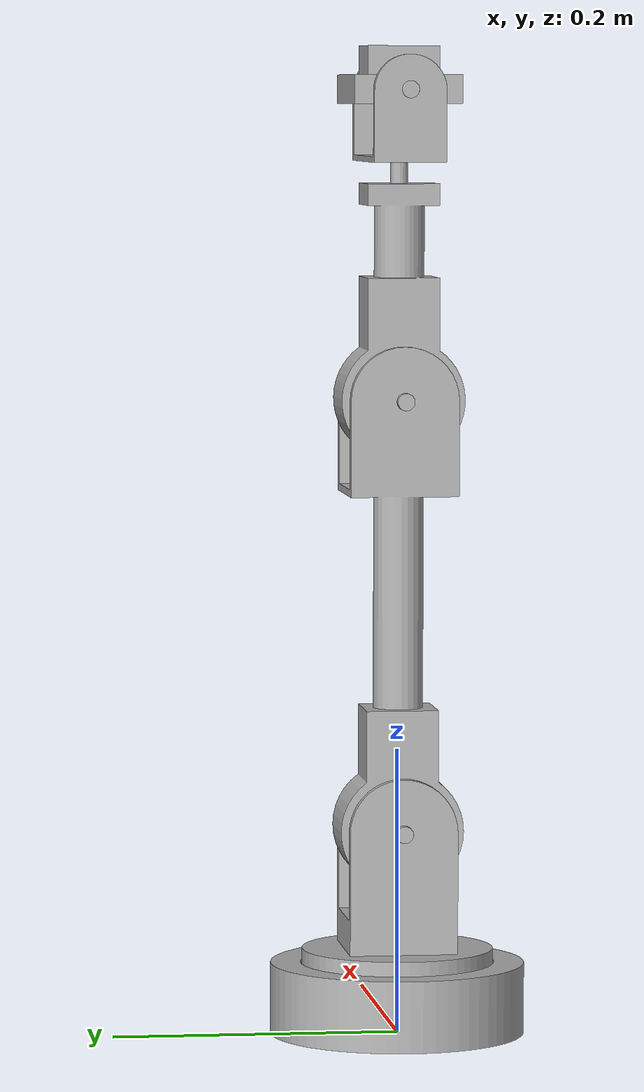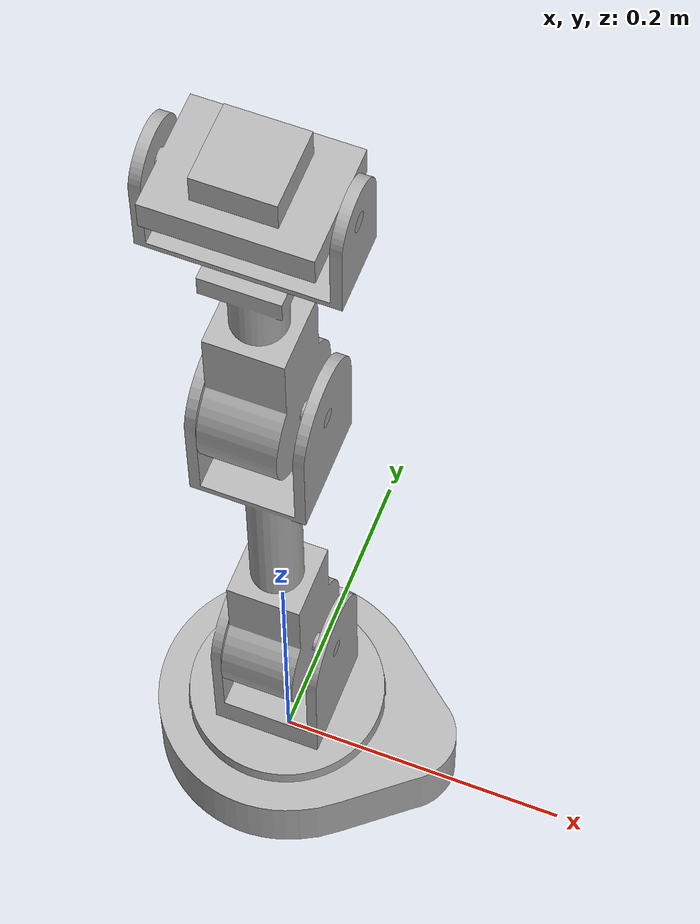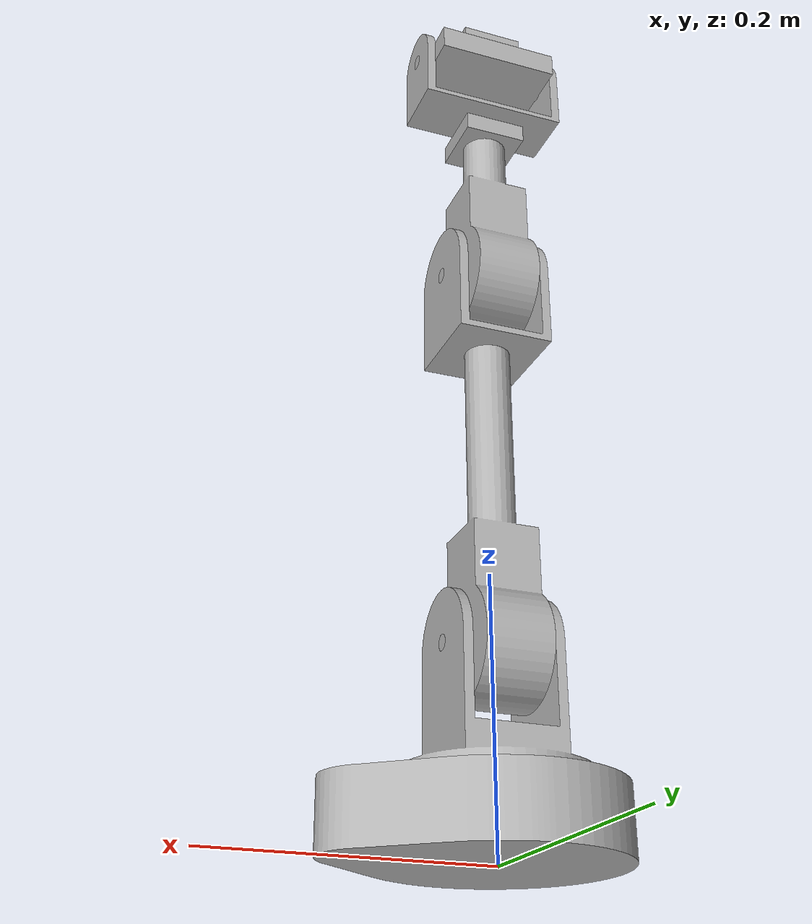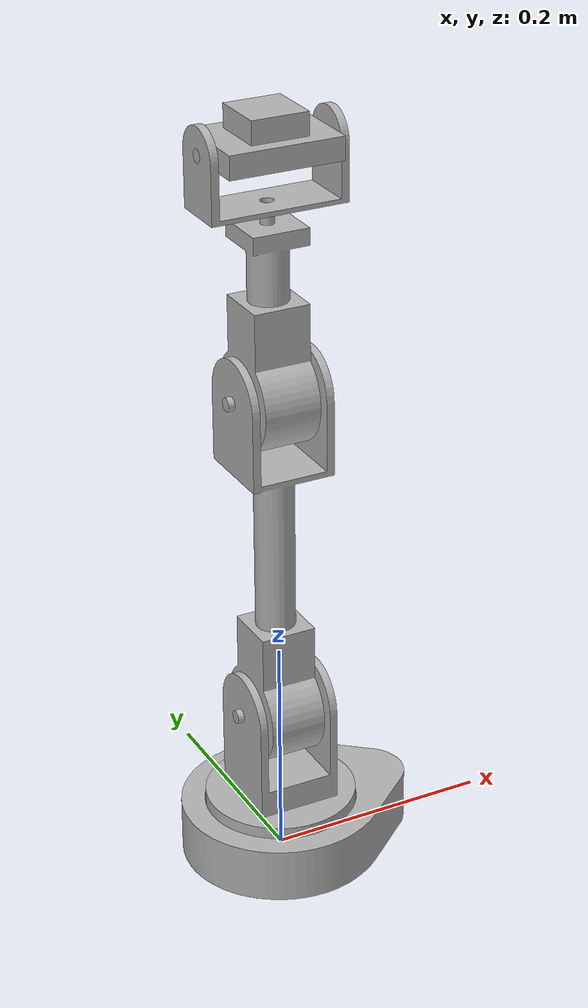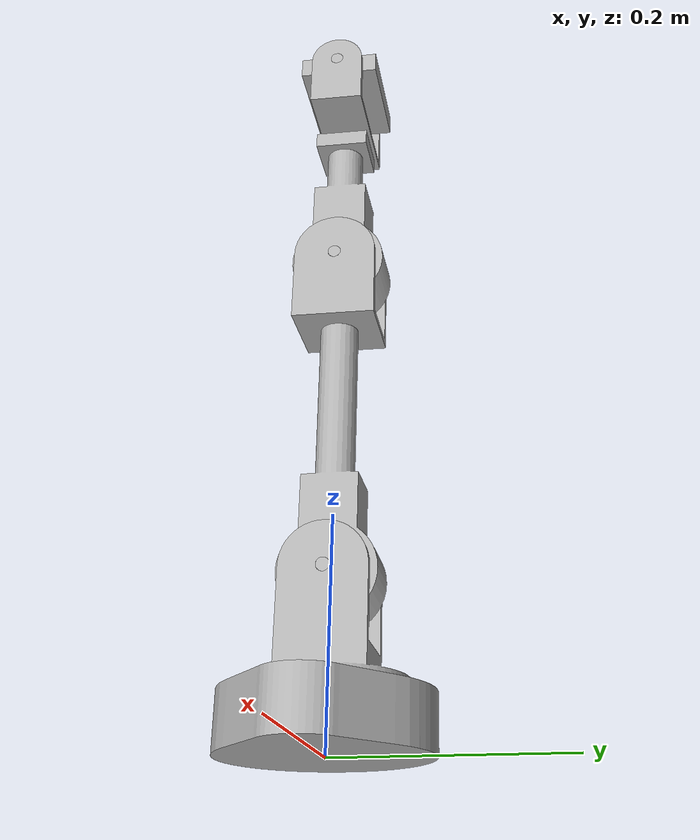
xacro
<?xml version="1.0"?>
<robot xmlns:xacro="http://www.ros.org/wiki/xacro" name="cycloidal_arm">
    <xacro:arg name="initial_positions_file" default="initial_positions.yaml" />

    <!-- Import cycloidal_arm urdf file -->
    <xacro:include filename="$(find cycloidal_arm)/urdf/cycloidal_arm.xacro" />

    <!-- Import control_xacro -->
    <xacro:include filename="cycloidal_arm.ros2_control.xacro" />

    <xacro:cycloidal_arm_ros2_control name="FakeSystem" initial_positions_file="$(arg initial_positions_file)"/>

</robot>

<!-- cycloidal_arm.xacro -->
<robot name="cycloidal_arm" xmlns:xacro="http://www.ros.org/wiki/xacro">

<xacro:include filename="$(find cycloidal_arm)/urdf/materials.xacro" />

<link name="world"/>

<link name="base_link">
  <inertial>
    <origin xyz="0.011250081392468421 -3.307759790897504e-06 0.02096005715733511" rpy="0 0 0"/>
    <mass value="1.1434563677530065"/>
    <inertia ixx="0.002559" iyy="0.003586" izz="0.005736" ixy="-0.0" iyz="0.0" ixz="-5.2e-05"/>
  </inertial>
  <visual>
    <origin xyz="0 0 0" rpy="0 0 0"/>
    <geometry>
      <mesh filename="file://$(find cycloidal_arm)/meshes/base_link.stl" scale="0.001 0.001 0.001"/>
    </geometry>
    <material name="silver"/>
  </visual>
  <collision>
    <origin xyz="0 0 0" rpy="0 0 0"/>
    <geometry>
      <mesh filename="file://$(find cycloidal_arm)/meshes/base_link.stl" scale="0.001 0.001 0.001"/>
    </geometry>
  </collision>
</link>

<joint name="base_joint" type="fixed">
  <origin xyz="0.0 0.0 0.0" rpy="0 0 0"/>
  <parent link="world"/>
  <child link="base_link"/>
</joint>

<link name="link_1">
  <inertial>
    <origin xyz="2.785423607376964e-17 -1.5319829840573303e-15 0.03284853130132173" rpy="0 0 0"/>
    <mass value="0.6922210189689346"/>
    <inertia ixx="0.00133" iyy="0.001397" izz="0.001299" ixy="0.0" iyz="0.0" ixz="-0.0"/>
  </inertial>
  <visual>
    <origin xyz="-0.0 -0.0 -0.03" rpy="0 0 0"/>
    <geometry>
      <mesh filename="file://$(find cycloidal_arm)/meshes/link_1_1.stl" scale="0.001 0.001 0.001"/>
    </geometry>
    <material name="silver"/>
  </visual>
  <collision>
    <origin xyz="-0.0 -0.0 -0.03" rpy="0 0 0"/>
    <geometry>
      <mesh filename="file://$(find cycloidal_arm)/meshes/link_1_1.stl" scale="0.001 0.001 0.001"/>
    </geometry>
  </collision>
</link>

<link name="link_2">
  <inertial>
    <origin xyz="-0.04 -1.6058763459882063e-05 0.09471209008925147" rpy="0 0 0"/>
    <mass value="0.7128365952218098"/>
    <inertia ixx="0.008572" iyy="0.008566" izz="0.000471" ixy="-0.0" iyz="-0.0" ixz="-0.0"/>
  </inertial>
  <visual>
    <origin xyz="-0.037148 0.0 -0.14518" rpy="0 0 0"/>
    <geometry>
      <mesh filename="file://$(find cycloidal_arm)/meshes/link_2_1.stl" scale="0.001 0.001 0.001"/>
    </geometry>
    <material name="silver"/>
  </visual>
  <collision>
    <origin xyz="-0.037148 0.0 -0.14518" rpy="0 0 0"/>
    <geometry>
      <mesh filename="file://$(find cycloidal_arm)/meshes/link_2_1.stl" scale="0.001 0.001 0.001"/>
    </geometry>
  </collision>
</link>

<link name="link_3">
  <inertial>
    <origin xyz="-0.03999979461983164 -4.10877760374872e-06 0.036295042070174754" rpy="0 0 0"/>
    <mass value="0.5220823279917146"/>
    <inertia ixx="0.001597" iyy="0.001522" izz="0.000285" ixy="-0.0" iyz="0.0" ixz="-0.0"/>
  </inertial>
  <visual>
    <origin xyz="-0.034338 -0.0 -0.446144" rpy="0 0 0"/>
    <geometry>
      <mesh filename="file://$(find cycloidal_arm)/meshes/link_3_1.stl" scale="0.001 0.001 0.001"/>
    </geometry>
    <material name="silver"/>
  </visual>
  <collision>
    <origin xyz="-0.034338 -0.0 -0.446144" rpy="0 0 0"/>
    <geometry>
      <mesh filename="file://$(find cycloidal_arm)/meshes/link_3_1.stl" scale="0.001 0.001 0.001"/>
    </geometry>
  </collision>
</link>

<link name="link_4">
  <inertial>
    <origin xyz="2.057230434589566e-07 -1.8627928064288893e-10 0.024133785235029404" rpy="0 0 0"/>
    <mass value="0.07124123876912478"/>
    <inertia ixx="5e-05" iyy="0.000214" izz="0.000193" ixy="-0.0" iyz="0.0" ixz="-0.0"/>
  </inertial>
  <visual>
    <origin xyz="0.005662 0.0 -0.611106" rpy="0 0 0"/>
    <geometry>
      <mesh filename="file://$(find cycloidal_arm)/meshes/link_4_1.stl" scale="0.001 0.001 0.001"/>
    </geometry>
    <material name="silver"/>
  </visual>
  <collision>
    <origin xyz="0.005662 0.0 -0.611106" rpy="0 0 0"/>
    <geometry>
      <mesh filename="file://$(find cycloidal_arm)/meshes/link_4_1.stl" scale="0.001 0.001 0.001"/>
    </geometry>
  </collision>
</link>

<link name="link_5">
  <inertial>
    <origin xyz="-0.05999979427694806 -1.8626450962614486e-10 1.6900727983770736e-07" rpy="0 0 0"/>
    <mass value="0.16139766351321969"/>
    <inertia ixx="8e-05" iyy="0.000145" izz="0.000214" ixy="0.0" iyz="-0.0" ixz="0.0"/>
  </inertial>
  <visual>
    <origin xyz="-0.054338 0.0 -0.661106" rpy="0 0 0"/>
    <geometry>
      <mesh filename="file://$(find cycloidal_arm)/meshes/link_5_1.stl" scale="0.001 0.001 0.001"/>
    </geometry>
    <material name="silver"/>
  </visual>
  <collision>
    <origin xyz="-0.054338 0.0 -0.661106" rpy="0 0 0"/>
    <geometry>
      <mesh filename="file://$(find cycloidal_arm)/meshes/link_5_1.stl" scale="0.001 0.001 0.001"/>
    </geometry>
  </collision>
</link>

<link name="camera">
  <inertial>
    <origin xyz="2.0572305194262175e-07 -1.8626450660050708e-10 0.03000169005066173" rpy="0 0 0"/>
    <mass value="0.301"/>
    <inertia ixx="7.3e-05" iyy="7.3e-05" izz="0.000125" ixy="0.0" iyz="0.0" ixz="0.0"/>
  </inertial>
  <visual>
    <origin xyz="0.005662 0.0 -0.671106" rpy="0 0 0"/>
    <geometry>
      <mesh filename="file://$(find cycloidal_arm)/meshes/camera_1.stl" scale="0.001 0.001 0.001"/>
    </geometry>
    <material name="silver"/>
  </visual>
  <collision>
    <origin xyz="0.005662 0.0 -0.671106" rpy="0 0 0"/>
    <geometry>
      <mesh filename="file://$(find cycloidal_arm)/meshes/camera_1.stl" scale="0.001 0.001 0.001"/>
    </geometry>
  </collision>
</link>

<joint name="Revolute_1" type="revolute">
  <origin xyz="0.0 0.0 0.03" rpy="0 0 0"/>
  <parent link="base_link"/>
  <child link="link_1"/>
  <axis xyz="0.0 0.0 1.0"/>
  <limit upper="2.268928" lower="-2.268928" effort="30" velocity="3.0"/>
</joint>

<joint name="Revolute_2" type="revolute">
  <origin xyz="0.037148 -0.0 0.11518" rpy="0 0 0"/>
  <parent link="link_1"/>
  <child link="link_2"/>
  <axis xyz="-1.0 0.0 0.0"/>
  <limit upper="0.523599" lower="-0.523599" effort="30" velocity="3.0"/>
</joint>

<joint name="Revolute_3" type="revolute">
  <origin xyz="-0.00281 0.0 0.300964" rpy="0 0 0"/>
  <parent link="link_2"/>
  <child link="link_3"/>
  <axis xyz="-1.0 0.0 0.0"/>
  <limit upper="1.570796" lower="-1.570796" effort="30" velocity="3.0"/>
</joint>

<joint name="Revolute_4" type="revolute">
  <origin xyz="-0.04 -0.0 0.164962" rpy="0 0 0"/>
  <parent link="link_3"/>
  <child link="link_4"/>
  <axis xyz="0.0 0.0 1.0"/>
  <limit upper="1.570796" lower="-1.570796" effort="30" velocity="3.0"/>
</joint>

<joint name="Revolute_5" type="revolute">
  <origin xyz="0.06 0.0 0.05" rpy="0 0 0"/>
  <parent link="link_4"/>
  <child link="link_5"/>
  <axis xyz="-1.0 0.0 0.0"/>
  <limit upper="1.570796" lower="-1.570796" effort="30" velocity="3.0"/>
</joint>

<joint name="camera_joint" type="fixed">
  <origin xyz="-0.06 0.0 0.01" rpy="0 0 0"/>
  <parent link="link_5"/>
  <child link="camera"/>
</joint>

<xacro:include filename="$(find cycloidal_arm)/urdf/gazebo_arm.xacro" />
<xacro:include filename="$(find cycloidal_arm)/urdf/trans_arm.xacro" />
<xacro:include filename="$(find cycloidal_arm)/urdf/camera.xacro" />
</robot>

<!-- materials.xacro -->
<robot name="cycloidal_arm" xmlns:xacro="http://www.ros.org/wiki/xacro" >

<material name="silver">
  <color rgba="0.700 0.700 0.700 1.000"/>
</material>

</robot>

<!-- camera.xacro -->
<robot name="cycloidal_arm" xmlns:xacro="http://www.ros.org/wiki/xacro" >

<link name="camera_optical"/>

<joint name="camera_optical_joint" type="fixed">
  <parent link="camera"/>
  <child link="camera_optical"/>
  <origin xyz="0 0 0" rpy="0 -1.57 1.57"/>
</joint>

<gazebo reference="camera_optical">
    <sensor type="camera" name="camera">
        <pose> 0.2 0 0 1.57 0 1.57 </pose>
        <visualize>true</visualize>
        <update_rate>30.0</update_rate>
        <camera name="head">
          <horizontal_fov>1.089</horizontal_fov>
          <image>
            <width>640</width>
            <height>640</height>
            <format>R8G8B8</format>
          </image>
          <clip>
            <near>0.05</near>
            <far>30</far>
          </clip>
        </camera>
        <plugin name="camera_controller" filename="libgazebo_ros_camera.so">
          <alwaysOn>true</alwaysOn>
          <update_rate>0.0</update_rate>
          <cameraName>cycloidal_arm/camera_optical</cameraName>
          <imageTopicName>image_raw</imageTopicName>
          <cameraInfoTopicName>camera_info</cameraInfoTopicName>
          <frame_name>camera_optical</frame_name>
        </plugin>
    </sensor>

</gazebo>

</robot>
